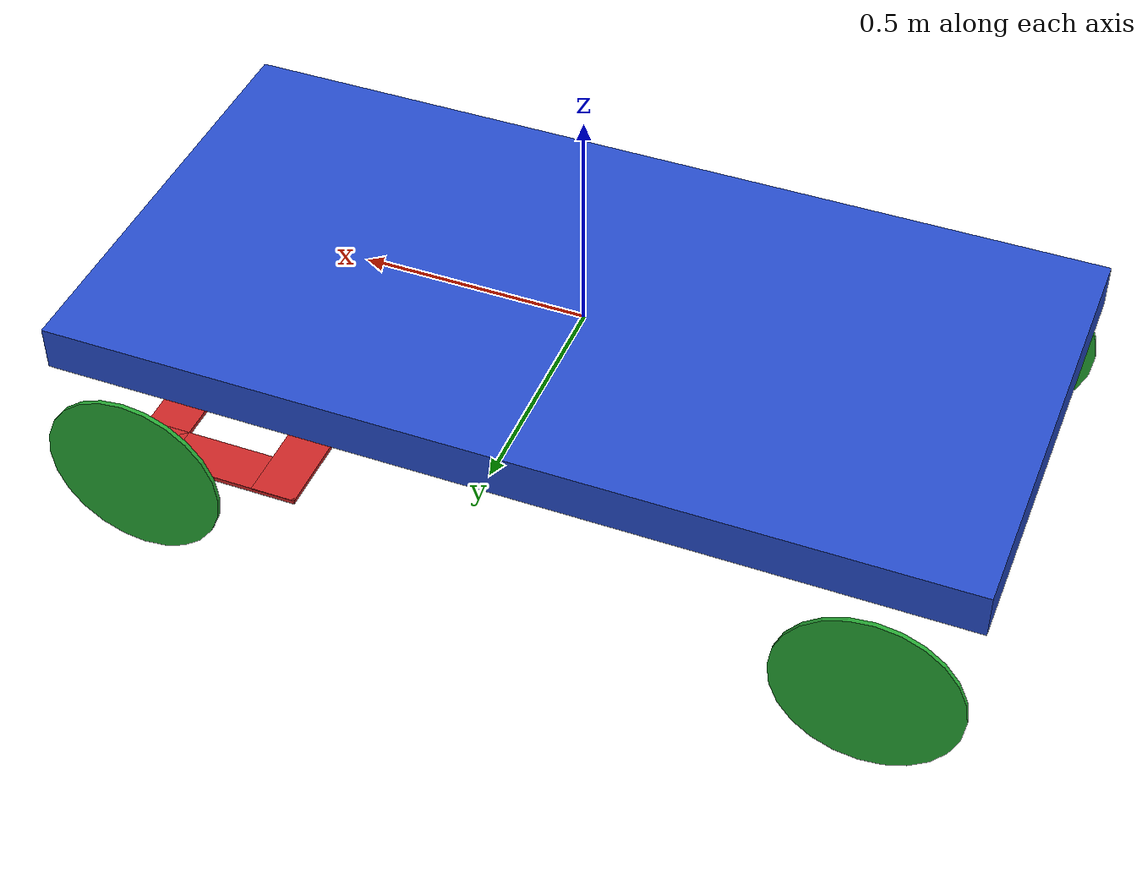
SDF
<sdf version='1.7'>
  <model name='ackermann'>
    <link name='base_link'>
      <inertial>
        <pose>0.4 0 -0.125 0 -0 0</pose>
        <mass>2</mass>
        <inertia>
          <ixx>2.03125</ixx>
          <ixy>0</ixy>
          <ixz>0.1</ixz>
          <iyy>2.35125</iyy>
          <iyz>0</iyz>
          <izz>2.32</izz>
        </inertia>
      </inertial>
      <collision name='base_link_collision'>
        <pose>0 0 0 0 -0 0</pose>
        <geometry>
          <box>
            <size>2 1 0.1</size>
          </box>
        </geometry>
        <surface>
          <contact>
            <ode/>
          </contact>
          <friction>
            <ode/>
          </friction>
        </surface>
      </collision>
      <collision name='base_link_fixed_joint_lump__front_link_collision_1'>
        <pose>0.8 0 -0.25 0 -0 0</pose>
        <geometry>
          <box>
            <size>0.1 1 0.01</size>
          </box>
        </geometry>
        <surface>
          <contact>
            <ode/>
          </contact>
          <friction>
            <ode/>
          </friction>
        </surface>
      </collision>
      <visual name='base_link_visual'>
        <pose>0 0 0 0 -0 0</pose>
        <geometry>
          <box>
            <size>2 1 0.1</size>
          </box>
        </geometry>
        <material>
          <script>
            <name>Gazebo/Blue</name>
            <uri>file://media/materials/scripts/gazebo.material</uri>
          </script>
        </material>
      </visual>
      <visual name='base_link_fixed_joint_lump__front_link_visual_1'>
        <pose>0.8 0 -0.25 0 -0 0</pose>
        <geometry>
          <box>
            <size>0.1 1 0.01</size>
          </box>
        </geometry>
        <material>
          <script>
            <name>Gazebo/Red</name>
            <uri>file://media/materials/scripts/gazebo.material</uri>
          </script>
        </material>
      </visual>
    </link>
    <joint name='back_left_wheel_joint' type='revolute'>
      <pose relative_to='base_link'>-0.8 0.55 -0.25 0 -0 0</pose>
      <parent>base_link</parent>
      <child>back_left_wheel_link</child>
      <axis>
        <xyz>0 1 0</xyz>
        <limit>
          <lower>-1e+16</lower>
          <upper>1e+16</upper>
        </limit>
        <dynamics>
          <spring_reference>0</spring_reference>
          <spring_stiffness>0</spring_stiffness>
        </dynamics>
      </axis>
    </joint>
    <link name='back_left_wheel_link'>
      <pose relative_to='back_left_wheel_joint'>0 0 0 0 -0 0</pose>
      <inertial>
        <pose>0 0 0 0 -0 0</pose>
        <mass>1</mass>
        <inertia>
          <ixx>1</ixx>
          <ixy>0</ixy>
          <ixz>0</ixz>
          <iyy>1</iyy>
          <iyz>0</iyz>
          <izz>1</izz>
        </inertia>
      </inertial>
      <collision name='back_left_wheel_link_collision'>
        <pose>0 0 0 1.5708 -0 0</pose>
        <geometry>
          <cylinder>
            <length>0.01</length>
            <radius>0.2</radius>
          </cylinder>
        </geometry>
        <surface>
          <contact>
            <ode/>
          </contact>
          <friction>
            <ode/>
          </friction>
        </surface>
      </collision>
      <visual name='back_left_wheel_link_visual'>
        <pose>0 0 0 1.5708 -0 0</pose>
        <geometry>
          <cylinder>
            <length>0.01</length>
            <radius>0.2</radius>
          </cylinder>
        </geometry>
        <material>
          <script>
            <name>Gazebo/Green</name>
            <uri>file://media/materials/scripts/gazebo.material</uri>
          </script>
        </material>
      </visual>
    </link>
    <joint name='back_right_wheel_joint' type='revolute'>
      <pose relative_to='base_link'>-0.8 -0.55 -0.25 0 -0 0</pose>
      <parent>base_link</parent>
      <child>back_right_wheel_link</child>
      <axis>
        <xyz>0 1 0</xyz>
        <limit>
          <lower>-1e+16</lower>
          <upper>1e+16</upper>
        </limit>
        <dynamics>
          <spring_reference>0</spring_reference>
          <spring_stiffness>0</spring_stiffness>
        </dynamics>
      </axis>
    </joint>
    <link name='back_right_wheel_link'>
      <pose relative_to='back_right_wheel_joint'>0 0 0 0 -0 0</pose>
      <inertial>
        <pose>0 0 0 0 -0 0</pose>
        <mass>1</mass>
        <inertia>
          <ixx>1</ixx>
          <ixy>0</ixy>
          <ixz>0</ixz>
          <iyy>1</iyy>
          <iyz>0</iyz>
          <izz>1</izz>
        </inertia>
      </inertial>
      <collision name='back_right_wheel_link_collision'>
        <pose>0 0 0 1.5708 -0 0</pose>
        <geometry>
          <cylinder>
            <length>0.01</length>
            <radius>0.2</radius>
          </cylinder>
        </geometry>
        <surface>
          <contact>
            <ode/>
          </contact>
          <friction>
            <ode/>
          </friction>
        </surface>
      </collision>
      <visual name='back_right_wheel_link_visual'>
        <pose>0 0 0 1.5708 -0 0</pose>
        <geometry>
          <cylinder>
            <length>0.01</length>
            <radius>0.2</radius>
          </cylinder>
        </geometry>
        <material>
          <script>
            <name>Gazebo/Green</name>
            <uri>file://media/materials/scripts/gazebo.material</uri>
          </script>
        </material>
      </visual>
    </link>
    <joint name='front_left_bar_joint' type='revolute'>
      <pose relative_to='base_link'>0.8 0.45 -0.25 0 -0 0</pose>
      <parent>base_link</parent>
      <child>front_left_bar_link</child>
      <axis>
        <xyz>0 0 1</xyz>
        <limit>
          <lower>-0.5</lower>
          <upper>0.5</upper>
          <effort>100</effort>
          <velocity>10</velocity>
        </limit>
        <dynamics>
          <spring_reference>0</spring_reference>
          <spring_stiffness>0</spring_stiffness>
        </dynamics>
      </axis>
    </joint>
    <link name='front_left_bar_link'>
      <pose relative_to='front_left_bar_joint'>0 0 0 0 -0 0</pose>
      <inertial>
        <pose>0 0 0 0 -0 0</pose>
        <mass>1</mass>
        <inertia>
          <ixx>1</ixx>
          <ixy>0</ixy>
          <ixz>0</ixz>
          <iyy>1</iyy>
          <iyz>0</iyz>
          <izz>1</izz>
        </inertia>
      </inertial>
      <collision name='front_left_bar_link_collision'>
        <pose>-0.15 0 0 0 -0 0</pose>
        <geometry>
          <box>
            <size>0.4 0.1 0.01</size>
          </box>
        </geometry>
        <surface>
          <contact>
            <ode/>
          </contact>
          <friction>
            <ode/>
          </friction>
        </surface>
      </collision>
      <visual name='front_left_bar_link_visual'>
        <pose>-0.15 0 0 0 -0 0</pose>
        <geometry>
          <box>
            <size>0.4 0.1 0.01</size>
          </box>
        </geometry>
        <material>
          <script>
            <name>Gazebo/Red</name>
            <uri>file://media/materials/scripts/gazebo.material</uri>
          </script>
        </material>
      </visual>
    </link>
    <joint name='front_left_wheel_joint' type='revolute'>
      <pose relative_to='front_left_bar_link'>0 0.1 0 0 -0 0</pose>
      <parent>front_left_bar_link</parent>
      <child>front_left_wheel_link</child>
      <axis>
        <xyz>0 1 0</xyz>
        <limit>
          <lower>-1e+16</lower>
          <upper>1e+16</upper>
        </limit>
        <dynamics>
          <spring_reference>0</spring_reference>
          <spring_stiffness>0</spring_stiffness>
        </dynamics>
      </axis>
    </joint>
    <link name='front_left_wheel_link'>
      <pose relative_to='front_left_wheel_joint'>0 0 0 0 -0 0</pose>
      <inertial>
        <pose>0 0 0 0 -0 0</pose>
        <mass>1</mass>
        <inertia>
          <ixx>1</ixx>
          <ixy>0</ixy>
          <ixz>0</ixz>
          <iyy>1</iyy>
          <iyz>0</iyz>
          <izz>1</izz>
        </inertia>
      </inertial>
      <collision name='front_left_wheel_link_collision'>
        <pose>0 0 0 1.5708 -0 0</pose>
        <geometry>
          <cylinder>
            <length>0.01</length>
            <radius>0.2</radius>
          </cylinder>
        </geometry>
        <surface>
          <contact>
            <ode/>
          </contact>
          <friction>
            <ode/>
          </friction>
        </surface>
      </collision>
      <visual name='front_left_wheel_link_visual'>
        <pose>0 0 0 1.5708 -0 0</pose>
        <geometry>
          <cylinder>
            <length>0.01</length>
            <radius>0.2</radius>
          </cylinder>
        </geometry>
        <material>
          <script>
            <name>Gazebo/Green</name>
            <uri>file://media/materials/scripts/gazebo.material</uri>
          </script>
        </material>
      </visual>
    </link>
    <joint name='front_right_bar_joint' type='revolute'>
      <pose relative_to='base_link'>0.8 -0.45 -0.25 0 -0 0</pose>
      <parent>base_link</parent>
      <child>front_right_bar_link</child>
      <axis>
        <xyz>0 0 1</xyz>
        <limit>
          <lower>-0.5</lower>
          <upper>0.5</upper>
          <effort>100</effort>
          <velocity>10</velocity>
        </limit>
        <dynamics>
          <spring_reference>0</spring_reference>
          <spring_stiffness>0</spring_stiffness>
        </dynamics>
      </axis>
    </joint>
    <link name='front_right_bar_link'>
      <pose relative_to='front_right_bar_joint'>0 0 0 0 -0 0</pose>
      <inertial>
        <pose>0 0 0 0 -0 0</pose>
        <mass>1</mass>
        <inertia>
          <ixx>1</ixx>
          <ixy>0</ixy>
          <ixz>0</ixz>
          <iyy>1</iyy>
          <iyz>0</iyz>
          <izz>1</izz>
        </inertia>
      </inertial>
      <collision name='front_right_bar_link_collision'>
        <pose>-0.15 0 0 0 -0 0</pose>
        <geometry>
          <box>
            <size>0.4 0.1 0.01</size>
          </box>
        </geometry>
        <surface>
          <contact>
            <ode/>
          </contact>
          <friction>
            <ode/>
          </friction>
        </surface>
      </collision>
      <visual name='front_right_bar_link_visual'>
        <pose>-0.15 0 0 0 -0 0</pose>
        <geometry>
          <box>
            <size>0.4 0.1 0.01</size>
          </box>
        </geometry>
        <material>
          <script>
            <name>Gazebo/Red</name>
            <uri>file://media/materials/scripts/gazebo.material</uri>
          </script>
        </material>
      </visual>
    </link>
    <joint name='front_right_wheel_joint' type='revolute'>
      <pose relative_to='front_right_bar_link'>0 -0.1 0 0 -0 0</pose>
      <parent>front_right_bar_link</parent>
      <child>front_right_wheel_link</child>
      <axis>
        <xyz>0 1 0</xyz>
        <limit>
          <lower>-1e+16</lower>
          <upper>1e+16</upper>
        </limit>
        <dynamics>
          <spring_reference>0</spring_reference>
          <spring_stiffness>0</spring_stiffness>
        </dynamics>
      </axis>
    </joint>
    <link name='front_right_wheel_link'>
      <pose relative_to='front_right_wheel_joint'>0 0 0 0 -0 0</pose>
      <inertial>
        <pose>0 0 0 0 -0 0</pose>
        <mass>1</mass>
        <inertia>
          <ixx>1</ixx>
          <ixy>0</ixy>
          <ixz>0</ixz>
          <iyy>1</iyy>
          <iyz>0</iyz>
          <izz>1</izz>
        </inertia>
      </inertial>
      <collision name='front_right_wheel_link_collision'>
        <pose>0 0 0 1.5708 -0 0</pose>
        <geometry>
          <cylinder>
            <length>0.01</length>
            <radius>0.2</radius>
          </cylinder>
        </geometry>
        <surface>
          <contact>
            <ode/>
          </contact>
          <friction>
            <ode/>
          </friction>
        </surface>
      </collision>
      <visual name='front_right_wheel_link_visual'>
        <pose>0 0 0 1.5708 -0 0</pose>
        <geometry>
          <cylinder>
            <length>0.01</length>
            <radius>0.2</radius>
          </cylinder>
        </geometry>
        <material>
          <script>
            <name>Gazebo/Green</name>
            <uri>file://media/materials/scripts/gazebo.material</uri>
          </script>
        </material>
      </visual>
      <gravity>1</gravity>
    </link>
    <joint name='steer_joint' type='revolute'>
      <pose relative_to='base_link'>0.8 0 -0.25 0 -0 0</pose>
      <parent>base_link</parent>
      <child>steer_link</child>
      <axis>
        <xyz>0 0 1</xyz>
        <limit>
          <lower>-0.5</lower>
          <upper>0.5</upper>
          <effort>100</effort>
          <velocity>10</velocity>
        </limit>
        <dynamics>
          <spring_reference>0</spring_reference>
          <spring_stiffness>0</spring_stiffness>
        </dynamics>
      </axis>
    </joint>
    <link name='steer_link'>
      <pose relative_to='steer_joint'>0 0 0 0 -0 0</pose>
      <inertial>
        <pose>0 0 0 0 -0 0</pose>
        <mass>1</mass>
        <inertia>
          <ixx>1</ixx>
          <ixy>0</ixy>
          <ixz>0</ixz>
          <iyy>1</iyy>
          <iyz>0</iyz>
          <izz>1</izz>
        </inertia>
      </inertial>
      <collision name='steer_link_collision'>
        <pose>-0.15 0 0 0 -0 0</pose>
        <geometry>
          <box>
            <size>0.4 0.1 0.01</size>
          </box>
        </geometry>
        <surface>
          <contact>
            <ode/>
          </contact>
          <friction>
            <ode/>
          </friction>
        </surface>
      </collision>
      <visual name='steer_link_visual'>
        <pose>-0.15 0 0 0 -0 0</pose>
        <geometry>
          <box>
            <size>0.4 0.1 0.01</size>
          </box>
        </geometry>
        <material>
          <script>
            <name>Gazebo/Red</name>
            <uri>file://media/materials/scripts/gazebo.material</uri>
          </script>
        </material>
      </visual>
    </link>
    <joint name='ackermann_joint' type='revolute'>
      <pose relative_to='steer_link'>-0.3 0 0 0 -0 0</pose>
      <parent>steer_link</parent>
      <child>ackermann_bar_link</child>
      <axis>
        <xyz>0 0 1</xyz>
        <limit>
          <lower>-0.5</lower>
          <upper>0.5</upper>
          <effort>100</effort>
          <velocity>10</velocity>
        </limit>
        <dynamics>
          <spring_reference>0</spring_reference>
          <spring_stiffness>0</spring_stiffness>
        </dynamics>
      </axis>
    </joint>
    <link name='ackermann_bar_link'>
      <pose relative_to='ackermann_joint'>0 0 0 0 -0 0</pose>
      <inertial>
        <pose>0 0 0 0 -0 0</pose>
        <mass>1</mass>
        <inertia>
          <ixx>1</ixx>
          <ixy>0</ixy>
          <ixz>0</ixz>
          <iyy>1</iyy>
          <iyz>0</iyz>
          <izz>1</izz>
        </inertia>
      </inertial>
      <collision name='ackermann_bar_link_collision'>
        <pose>0 0 0 0 -0 0</pose>
        <geometry>
          <box>
            <size>0.1 1 0.01</size>
          </box>
        </geometry>
        <surface>
          <contact>
            <ode/>
          </contact>
          <friction>
            <ode/>
          </friction>
        </surface>
      </collision>
      <visual name='ackermann_bar_link_visual'>
        <pose>0 0 0 0 -0 0</pose>
        <geometry>
          <box>
            <size>0.1 1 0.01</size>
          </box>
        </geometry>
        <material>
          <script>
            <name>Gazebo/Red</name>
            <uri>file://media/materials/scripts/gazebo.material</uri>
          </script>
        </material>
      </visual>
    </link>
    <static>0</static>
    <plugin name='ackermann_drive' filename='libgazebo_ros_ackermann_drive.so'>
      <ros>
        <namespace>ackermann</namespace>
        <remapping>cmd_vel:=cmd_vel</remapping>
        <remapping>odom:=odom</remapping>
        <remapping>distance:=distance</remapping>
      </ros>
      <updateRate>100.0</updateRate>
      <front_left_joint>front_left_wheel_joint</front_left_joint>
      <front_right_joint>front_right_wheel_joint</front_right_joint>
      <rear_left_joint>back_left_wheel_joint</rear_left_joint>
      <rear_right_joint>back_right_wheel_joint</rear_right_joint>
      <left_steering_joint>front_left_bar_joint</left_steering_joint>
      <right_steering_joint>front_right_bar_joint</right_steering_joint>
      <steering_wheel_joint>steer_link</steering_wheel_joint>
      <max_steer>0.6458</max_steer>
      <max_steering_angle>7.85</max_steering_angle>
      <max_speed>20</max_speed>
      <left_steering_pid_gain>1500 0 1</left_steering_pid_gain>
      <left_steering_i_range>0 0</left_steering_i_range>
      <right_steering_pid_gain>1500 0 1</right_steering_pid_gain>
      <right_steering_i_range>0 0</right_steering_i_range>
      <linear_velocity_pid_gain>1000 0 1</linear_velocity_pid_gain>
      <linear_velocity_i_range>0 0</linear_velocity_i_range>
      <publish_odom>1</publish_odom>
      <publish_odom_tf>1</publish_odom_tf>
      <publish_wheel_tf>1</publish_wheel_tf>
      <publish_distance>1</publish_distance>
      <odometry_frame>odom</odometry_frame>
    </plugin>
    <joint:hinge name='ackermann_left_bar_joint'>
      <body1>ackermann_bar_link</body1>
      <body2>front_left_bar_link</body2>
      <anchor>ackermann_bar_link</anchor>
      <axis>0 0 1</axis>
      <anchorOffset>0 0.45 0</anchorOffset>
    </joint:hinge>
    <joint:hinge name='ackermann_right_bar_joint'>
      <body1>ackermann_bar_link</body1>
      <body2>front_right_bar_link</body2>
      <anchor>ackermann_bar_link</anchor>
      <axis>0 0 1</axis>
      <anchorOffset>0 -0.45 0</anchorOffset>
    </joint:hinge>
  </model>
</sdf>
